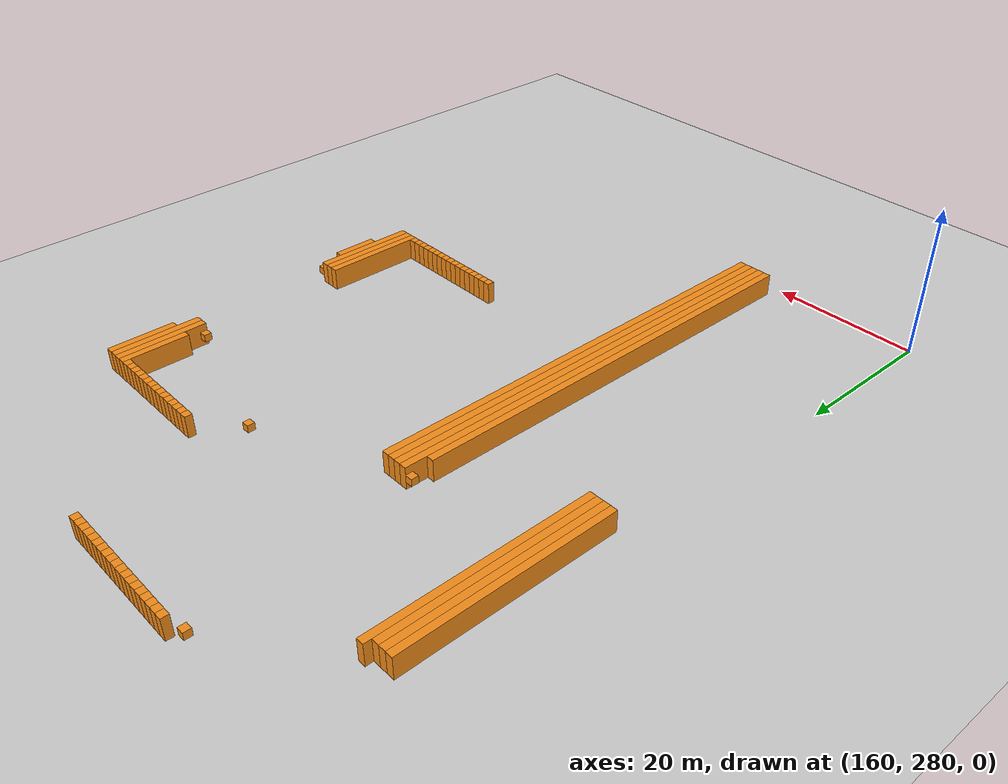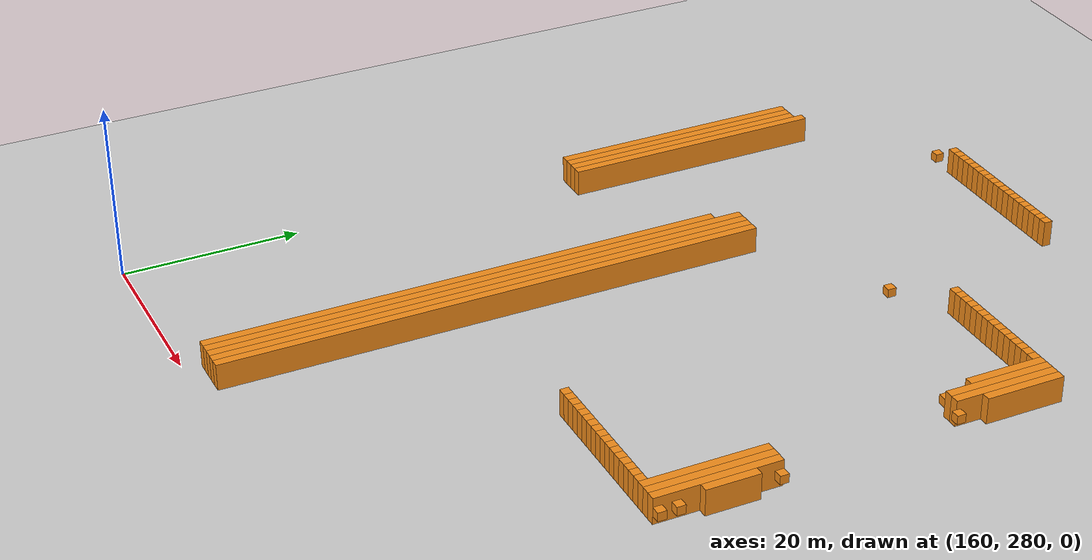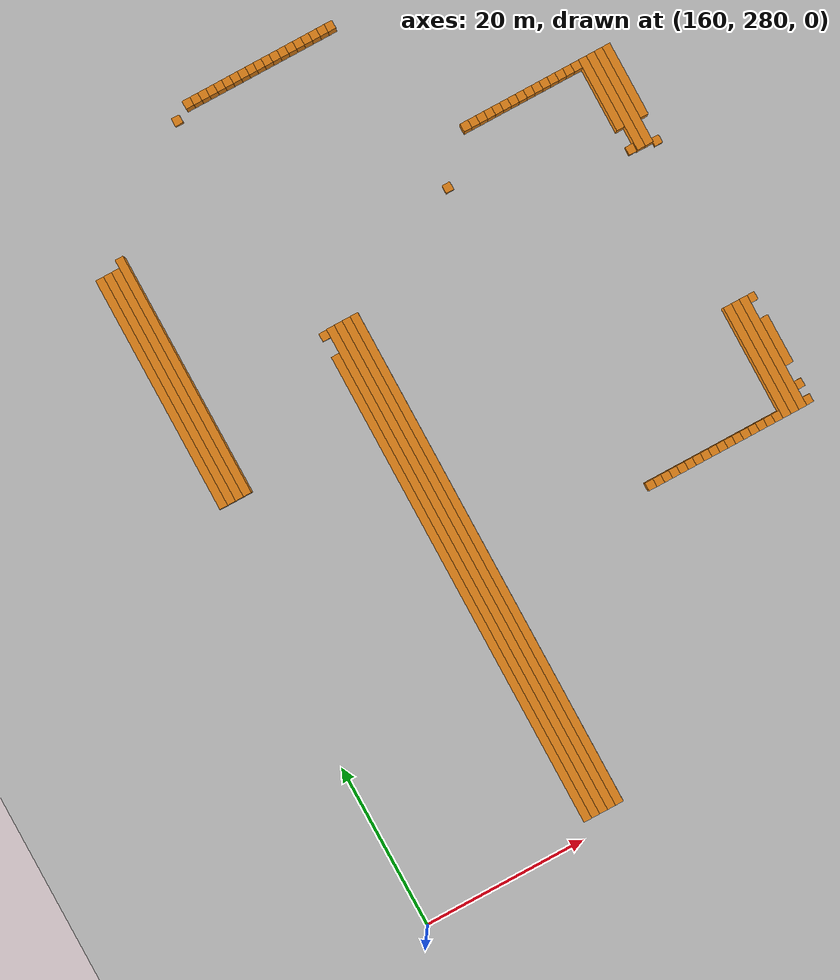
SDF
<sdf version="1.6">
 <world name="default">
  <include><uri>model://ground_plane</uri></include>
  <model name="unit_box_1696">
   <pose>162.50   346.50     1.50 0 0 0</pose>
   <static>1</static>
   <link name="link">
    <inertial>
     <mass>5000</mass>
     <inertia><ixx>200</ixx><ixy>0</ixy><ixz>0</ixz><iyy>200</iyy><iyz>0</iyz><izz>200</izz></inertia>
    </inertial>
    <collision name="collision"><geometry><box><size>1 29 3</size></box></geometry></collision>
    <visual name="visual">
     <geometry><box><size>1 29 3</size></box></geometry>
     <material>
      <script><name>Gazebo/Orange</name><uri>file://media/materials/scripts/gazebo.material</uri></script>
     </material>
    </visual>
   </link>
  </model>
  <model name="unit_box_1704">
   <pose>163.50   346.50     1.50 0 0 0</pose>
   <static>1</static>
   <link name="link">
    <inertial>
     <mass>5000</mass>
     <inertia><ixx>200</ixx><ixy>0</ixy><ixz>0</ixz><iyy>200</iyy><iyz>0</iyz><izz>200</izz></inertia>
    </inertial>
    <collision name="collision"><geometry><box><size>1 29 3</size></box></geometry></collision>
    <visual name="visual">
     <geometry><box><size>1 29 3</size></box></geometry>
     <material>
      <script><name>Gazebo/Orange</name><uri>file://media/materials/scripts/gazebo.material</uri></script>
     </material>
    </visual>
   </link>
  </model>
  <model name="unit_box_1712">
   <pose>164.50   346.50     1.50 0 0 0</pose>
   <static>1</static>
   <link name="link">
    <inertial>
     <mass>5000</mass>
     <inertia><ixx>200</ixx><ixy>0</ixy><ixz>0</ixz><iyy>200</iyy><iyz>0</iyz><izz>200</izz></inertia>
    </inertial>
    <collision name="collision"><geometry><box><size>1 29 3</size></box></geometry></collision>
    <visual name="visual">
     <geometry><box><size>1 29 3</size></box></geometry>
     <material>
      <script><name>Gazebo/Orange</name><uri>file://media/materials/scripts/gazebo.material</uri></script>
     </material>
    </visual>
   </link>
  </model>
  <model name="unit_box_1720">
   <pose>165.50   347.00     1.50 0 0 0</pose>
   <static>1</static>
   <link name="link">
    <inertial>
     <mass>5000</mass>
     <inertia><ixx>200</ixx><ixy>0</ixy><ixz>0</ixz><iyy>200</iyy><iyz>0</iyz><izz>200</izz></inertia>
    </inertial>
    <collision name="collision"><geometry><box><size>1 30 3</size></box></geometry></collision>
    <visual name="visual">
     <geometry><box><size>1 30 3</size></box></geometry>
     <material>
      <script><name>Gazebo/Orange</name><uri>file://media/materials/scripts/gazebo.material</uri></script>
     </material>
    </visual>
   </link>
  </model>
  <model name="unit_box_1809">
   <pose>178.50   372.50     1.50 0 0 0</pose>
   <static>1</static>
   <link name="link">
    <inertial>
     <mass>5000</mass>
     <inertia><ixx>200</ixx><ixy>0</ixy><ixz>0</ixz><iyy>200</iyy><iyz>0</iyz><izz>200</izz></inertia>
    </inertial>
    <collision name="collision"><geometry><box><size>1 1 1</size></box></geometry></collision>
    <visual name="visual">
     <geometry><box><size>1 1 1</size></box></geometry>
     <material>
      <script><name>Gazebo/Orange</name><uri>file://media/materials/scripts/gazebo.material</uri></script>
     </material>
    </visual>
   </link>
  </model>
  <model name="unit_box_1825">
   <pose>180.50   373.50     1.50 0 0 0</pose>
   <static>1</static>
   <link name="link">
    <inertial>
     <mass>5000</mass>
     <inertia><ixx>200</ixx><ixy>0</ixy><ixz>0</ixz><iyy>200</iyy><iyz>0</iyz><izz>200</izz></inertia>
    </inertial>
    <collision name="collision"><geometry><box><size>1 1 3</size></box></geometry></collision>
    <visual name="visual">
     <geometry><box><size>1 1 3</size></box></geometry>
     <material>
      <script><name>Gazebo/Orange</name><uri>file://media/materials/scripts/gazebo.material</uri></script>
     </material>
    </visual>
   </link>
  </model>
  <model name="unit_box_1833">
   <pose>181.50   311.50     1.50 0 0 0</pose>
   <static>1</static>
   <link name="link">
    <inertial>
     <mass>5000</mass>
     <inertia><ixx>200</ixx><ixy>0</ixy><ixz>0</ixz><iyy>200</iyy><iyz>0</iyz><izz>200</izz></inertia>
    </inertial>
    <collision name="collision"><geometry><box><size>1 59 3</size></box></geometry></collision>
    <visual name="visual">
     <geometry><box><size>1 59 3</size></box></geometry>
     <material>
      <script><name>Gazebo/Orange</name><uri>file://media/materials/scripts/gazebo.material</uri></script>
     </material>
    </visual>
   </link>
  </model>
  <model name="unit_box_1834">
   <pose>181.50   343.50     1.50 0 0 0</pose>
   <static>1</static>
   <link name="link">
    <inertial>
     <mass>5000</mass>
     <inertia><ixx>200</ixx><ixy>0</ixy><ixz>0</ixz><iyy>200</iyy><iyz>0</iyz><izz>200</izz></inertia>
    </inertial>
    <collision name="collision"><geometry><box><size>1 1 1</size></box></geometry></collision>
    <visual name="visual">
     <geometry><box><size>1 1 1</size></box></geometry>
     <material>
      <script><name>Gazebo/Orange</name><uri>file://media/materials/scripts/gazebo.material</uri></script>
     </material>
    </visual>
   </link>
  </model>
  <model name="unit_box_1835">
   <pose>181.50   373.50     1.50 0 0 0</pose>
   <static>1</static>
   <link name="link">
    <inertial>
     <mass>5000</mass>
     <inertia><ixx>200</ixx><ixy>0</ixy><ixz>0</ixz><iyy>200</iyy><iyz>0</iyz><izz>200</izz></inertia>
    </inertial>
    <collision name="collision"><geometry><box><size>1 1 3</size></box></geometry></collision>
    <visual name="visual">
     <geometry><box><size>1 1 3</size></box></geometry>
     <material>
      <script><name>Gazebo/Orange</name><uri>file://media/materials/scripts/gazebo.material</uri></script>
     </material>
    </visual>
   </link>
  </model>
  <model name="unit_box_1843">
   <pose>182.50   313.00     1.50 0 0 0</pose>
   <static>1</static>
   <link name="link">
    <inertial>
     <mass>5000</mass>
     <inertia><ixx>200</ixx><ixy>0</ixy><ixz>0</ixz><iyy>200</iyy><iyz>0</iyz><izz>200</izz></inertia>
    </inertial>
    <collision name="collision"><geometry><box><size>1 62 3</size></box></geometry></collision>
    <visual name="visual">
     <geometry><box><size>1 62 3</size></box></geometry>
     <material>
      <script><name>Gazebo/Orange</name><uri>file://media/materials/scripts/gazebo.material</uri></script>
     </material>
    </visual>
   </link>
  </model>
  <model name="unit_box_1844">
   <pose>182.50   373.50     1.50 0 0 0</pose>
   <static>1</static>
   <link name="link">
    <inertial>
     <mass>5000</mass>
     <inertia><ixx>200</ixx><ixy>0</ixy><ixz>0</ixz><iyy>200</iyy><iyz>0</iyz><izz>200</izz></inertia>
    </inertial>
    <collision name="collision"><geometry><box><size>1 1 3</size></box></geometry></collision>
    <visual name="visual">
     <geometry><box><size>1 1 3</size></box></geometry>
     <material>
      <script><name>Gazebo/Orange</name><uri>file://media/materials/scripts/gazebo.material</uri></script>
     </material>
    </visual>
   </link>
  </model>
  <model name="unit_box_1852">
   <pose>183.50   313.00     1.50 0 0 0</pose>
   <static>1</static>
   <link name="link">
    <inertial>
     <mass>5000</mass>
     <inertia><ixx>200</ixx><ixy>0</ixy><ixz>0</ixz><iyy>200</iyy><iyz>0</iyz><izz>200</izz></inertia>
    </inertial>
    <collision name="collision"><geometry><box><size>1 62 3</size></box></geometry></collision>
    <visual name="visual">
     <geometry><box><size>1 62 3</size></box></geometry>
     <material>
      <script><name>Gazebo/Orange</name><uri>file://media/materials/scripts/gazebo.material</uri></script>
     </material>
    </visual>
   </link>
  </model>
  <model name="unit_box_1853">
   <pose>183.50   373.50     1.50 0 0 0</pose>
   <static>1</static>
   <link name="link">
    <inertial>
     <mass>5000</mass>
     <inertia><ixx>200</ixx><ixy>0</ixy><ixz>0</ixz><iyy>200</iyy><iyz>0</iyz><izz>200</izz></inertia>
    </inertial>
    <collision name="collision"><geometry><box><size>1 1 3</size></box></geometry></collision>
    <visual name="visual">
     <geometry><box><size>1 1 3</size></box></geometry>
     <material>
      <script><name>Gazebo/Orange</name><uri>file://media/materials/scripts/gazebo.material</uri></script>
     </material>
    </visual>
   </link>
  </model>
  <model name="unit_box_1861">
   <pose>184.50   313.00     1.50 0 0 0</pose>
   <static>1</static>
   <link name="link">
    <inertial>
     <mass>5000</mass>
     <inertia><ixx>200</ixx><ixy>0</ixy><ixz>0</ixz><iyy>200</iyy><iyz>0</iyz><izz>200</izz></inertia>
    </inertial>
    <collision name="collision"><geometry><box><size>1 62 3</size></box></geometry></collision>
    <visual name="visual">
     <geometry><box><size>1 62 3</size></box></geometry>
     <material>
      <script><name>Gazebo/Orange</name><uri>file://media/materials/scripts/gazebo.material</uri></script>
     </material>
    </visual>
   </link>
  </model>
  <model name="unit_box_1862">
   <pose>184.50   373.50     1.50 0 0 0</pose>
   <static>1</static>
   <link name="link">
    <inertial>
     <mass>5000</mass>
     <inertia><ixx>200</ixx><ixy>0</ixy><ixz>0</ixz><iyy>200</iyy><iyz>0</iyz><izz>200</izz></inertia>
    </inertial>
    <collision name="collision"><geometry><box><size>1 1 3</size></box></geometry></collision>
    <visual name="visual">
     <geometry><box><size>1 1 3</size></box></geometry>
     <material>
      <script><name>Gazebo/Orange</name><uri>file://media/materials/scripts/gazebo.material</uri></script>
     </material>
    </visual>
   </link>
  </model>
  <model name="unit_box_1870">
   <pose>185.50   313.00     1.50 0 0 0</pose>
   <static>1</static>
   <link name="link">
    <inertial>
     <mass>5000</mass>
     <inertia><ixx>200</ixx><ixy>0</ixy><ixz>0</ixz><iyy>200</iyy><iyz>0</iyz><izz>200</izz></inertia>
    </inertial>
    <collision name="collision"><geometry><box><size>1 62 3</size></box></geometry></collision>
    <visual name="visual">
     <geometry><box><size>1 62 3</size></box></geometry>
     <material>
      <script><name>Gazebo/Orange</name><uri>file://media/materials/scripts/gazebo.material</uri></script>
     </material>
    </visual>
   </link>
  </model>
  <model name="unit_box_1871">
   <pose>185.50   373.50     1.50 0 0 0</pose>
   <static>1</static>
   <link name="link">
    <inertial>
     <mass>5000</mass>
     <inertia><ixx>200</ixx><ixy>0</ixy><ixz>0</ixz><iyy>200</iyy><iyz>0</iyz><izz>200</izz></inertia>
    </inertial>
    <collision name="collision"><geometry><box><size>1 1 3</size></box></geometry></collision>
    <visual name="visual">
     <geometry><box><size>1 1 3</size></box></geometry>
     <material>
      <script><name>Gazebo/Orange</name><uri>file://media/materials/scripts/gazebo.material</uri></script>
     </material>
    </visual>
   </link>
  </model>
  <model name="unit_box_1879">
   <pose>186.50   373.50     1.50 0 0 0</pose>
   <static>1</static>
   <link name="link">
    <inertial>
     <mass>5000</mass>
     <inertia><ixx>200</ixx><ixy>0</ixy><ixz>0</ixz><iyy>200</iyy><iyz>0</iyz><izz>200</izz></inertia>
    </inertial>
    <collision name="collision"><geometry><box><size>1 1 3</size></box></geometry></collision>
    <visual name="visual">
     <geometry><box><size>1 1 3</size></box></geometry>
     <material>
      <script><name>Gazebo/Orange</name><uri>file://media/materials/scripts/gazebo.material</uri></script>
     </material>
    </visual>
   </link>
  </model>
  <model name="unit_box_1887">
   <pose>187.50   373.50     1.50 0 0 0</pose>
   <static>1</static>
   <link name="link">
    <inertial>
     <mass>5000</mass>
     <inertia><ixx>200</ixx><ixy>0</ixy><ixz>0</ixz><iyy>200</iyy><iyz>0</iyz><izz>200</izz></inertia>
    </inertial>
    <collision name="collision"><geometry><box><size>1 1 3</size></box></geometry></collision>
    <visual name="visual">
     <geometry><box><size>1 1 3</size></box></geometry>
     <material>
      <script><name>Gazebo/Orange</name><uri>file://media/materials/scripts/gazebo.material</uri></script>
     </material>
    </visual>
   </link>
  </model>
  <model name="unit_box_1895">
   <pose>188.50   373.50     1.50 0 0 0</pose>
   <static>1</static>
   <link name="link">
    <inertial>
     <mass>5000</mass>
     <inertia><ixx>200</ixx><ixy>0</ixy><ixz>0</ixz><iyy>200</iyy><iyz>0</iyz><izz>200</izz></inertia>
    </inertial>
    <collision name="collision"><geometry><box><size>1 1 3</size></box></geometry></collision>
    <visual name="visual">
     <geometry><box><size>1 1 3</size></box></geometry>
     <material>
      <script><name>Gazebo/Orange</name><uri>file://media/materials/scripts/gazebo.material</uri></script>
     </material>
    </visual>
   </link>
  </model>
  <model name="unit_box_1903">
   <pose>189.50   373.50     1.50 0 0 0</pose>
   <static>1</static>
   <link name="link">
    <inertial>
     <mass>5000</mass>
     <inertia><ixx>200</ixx><ixy>0</ixy><ixz>0</ixz><iyy>200</iyy><iyz>0</iyz><izz>200</izz></inertia>
    </inertial>
    <collision name="collision"><geometry><box><size>1 1 3</size></box></geometry></collision>
    <visual name="visual">
     <geometry><box><size>1 1 3</size></box></geometry>
     <material>
      <script><name>Gazebo/Orange</name><uri>file://media/materials/scripts/gazebo.material</uri></script>
     </material>
    </visual>
   </link>
  </model>
  <model name="unit_box_1911">
   <pose>190.50   373.50     1.50 0 0 0</pose>
   <static>1</static>
   <link name="link">
    <inertial>
     <mass>5000</mass>
     <inertia><ixx>200</ixx><ixy>0</ixy><ixz>0</ixz><iyy>200</iyy><iyz>0</iyz><izz>200</izz></inertia>
    </inertial>
    <collision name="collision"><geometry><box><size>1 1 3</size></box></geometry></collision>
    <visual name="visual">
     <geometry><box><size>1 1 3</size></box></geometry>
     <material>
      <script><name>Gazebo/Orange</name><uri>file://media/materials/scripts/gazebo.material</uri></script>
     </material>
    </visual>
   </link>
  </model>
  <model name="unit_box_1919">
   <pose>191.50   373.50     1.50 0 0 0</pose>
   <static>1</static>
   <link name="link">
    <inertial>
     <mass>5000</mass>
     <inertia><ixx>200</ixx><ixy>0</ixy><ixz>0</ixz><iyy>200</iyy><iyz>0</iyz><izz>200</izz></inertia>
    </inertial>
    <collision name="collision"><geometry><box><size>1 1 3</size></box></geometry></collision>
    <visual name="visual">
     <geometry><box><size>1 1 3</size></box></geometry>
     <material>
      <script><name>Gazebo/Orange</name><uri>file://media/materials/scripts/gazebo.material</uri></script>
     </material>
    </visual>
   </link>
  </model>
  <model name="unit_box_1927">
   <pose>192.50   373.50     1.50 0 0 0</pose>
   <static>1</static>
   <link name="link">
    <inertial>
     <mass>5000</mass>
     <inertia><ixx>200</ixx><ixy>0</ixy><ixz>0</ixz><iyy>200</iyy><iyz>0</iyz><izz>200</izz></inertia>
    </inertial>
    <collision name="collision"><geometry><box><size>1 1 3</size></box></geometry></collision>
    <visual name="visual">
     <geometry><box><size>1 1 3</size></box></geometry>
     <material>
      <script><name>Gazebo/Orange</name><uri>file://media/materials/scripts/gazebo.material</uri></script>
     </material>
    </visual>
   </link>
  </model>
  <model name="unit_box_1936">
   <pose>193.50   373.50     1.50 0 0 0</pose>
   <static>1</static>
   <link name="link">
    <inertial>
     <mass>5000</mass>
     <inertia><ixx>200</ixx><ixy>0</ixy><ixz>0</ixz><iyy>200</iyy><iyz>0</iyz><izz>200</izz></inertia>
    </inertial>
    <collision name="collision"><geometry><box><size>1 1 3</size></box></geometry></collision>
    <visual name="visual">
     <geometry><box><size>1 1 3</size></box></geometry>
     <material>
      <script><name>Gazebo/Orange</name><uri>file://media/materials/scripts/gazebo.material</uri></script>
     </material>
    </visual>
   </link>
  </model>
  <model name="unit_box_1945">
   <pose>194.50   373.50     1.50 0 0 0</pose>
   <static>1</static>
   <link name="link">
    <inertial>
     <mass>5000</mass>
     <inertia><ixx>200</ixx><ixy>0</ixy><ixz>0</ixz><iyy>200</iyy><iyz>0</iyz><izz>200</izz></inertia>
    </inertial>
    <collision name="collision"><geometry><box><size>1 1 3</size></box></geometry></collision>
    <visual name="visual">
     <geometry><box><size>1 1 3</size></box></geometry>
     <material>
      <script><name>Gazebo/Orange</name><uri>file://media/materials/scripts/gazebo.material</uri></script>
     </material>
    </visual>
   </link>
  </model>
  <model name="unit_box_1954">
   <pose>195.50   373.50     1.50 0 0 0</pose>
   <static>1</static>
   <link name="link">
    <inertial>
     <mass>5000</mass>
     <inertia><ixx>200</ixx><ixy>0</ixy><ixz>0</ixz><iyy>200</iyy><iyz>0</iyz><izz>200</izz></inertia>
    </inertial>
    <collision name="collision"><geometry><box><size>1 1 3</size></box></geometry></collision>
    <visual name="visual">
     <geometry><box><size>1 1 3</size></box></geometry>
     <material>
      <script><name>Gazebo/Orange</name><uri>file://media/materials/scripts/gazebo.material</uri></script>
     </material>
    </visual>
   </link>
  </model>
  <model name="unit_box_1963">
   <pose>196.50   373.50     1.50 0 0 0</pose>
   <static>1</static>
   <link name="link">
    <inertial>
     <mass>5000</mass>
     <inertia><ixx>200</ixx><ixy>0</ixy><ixz>0</ixz><iyy>200</iyy><iyz>0</iyz><izz>200</izz></inertia>
    </inertial>
    <collision name="collision"><geometry><box><size>1 1 3</size></box></geometry></collision>
    <visual name="visual">
     <geometry><box><size>1 1 3</size></box></geometry>
     <material>
      <script><name>Gazebo/Orange</name><uri>file://media/materials/scripts/gazebo.material</uri></script>
     </material>
    </visual>
   </link>
  </model>
  <model name="unit_box_1972">
   <pose>197.50   373.50     1.50 0 0 0</pose>
   <static>1</static>
   <link name="link">
    <inertial>
     <mass>5000</mass>
     <inertia><ixx>200</ixx><ixy>0</ixy><ixz>0</ixz><iyy>200</iyy><iyz>0</iyz><izz>200</izz></inertia>
    </inertial>
    <collision name="collision"><geometry><box><size>1 1 3</size></box></geometry></collision>
    <visual name="visual">
     <geometry><box><size>1 1 3</size></box></geometry>
     <material>
      <script><name>Gazebo/Orange</name><uri>file://media/materials/scripts/gazebo.material</uri></script>
     </material>
    </visual>
   </link>
  </model>
  <model name="unit_box_1981">
   <pose>198.50   373.50     1.50 0 0 0</pose>
   <static>1</static>
   <link name="link">
    <inertial>
     <mass>5000</mass>
     <inertia><ixx>200</ixx><ixy>0</ixy><ixz>0</ixz><iyy>200</iyy><iyz>0</iyz><izz>200</izz></inertia>
    </inertial>
    <collision name="collision"><geometry><box><size>1 1 3</size></box></geometry></collision>
    <visual name="visual">
     <geometry><box><size>1 1 3</size></box></geometry>
     <material>
      <script><name>Gazebo/Orange</name><uri>file://media/materials/scripts/gazebo.material</uri></script>
     </material>
    </visual>
   </link>
  </model>
  <model name="unit_box_2012">
   <pose>201.50   351.50     1.50 0 0 0</pose>
   <static>1</static>
   <link name="link">
    <inertial>
     <mass>5000</mass>
     <inertia><ixx>200</ixx><ixy>0</ixy><ixz>0</ixz><iyy>200</iyy><iyz>0</iyz><izz>200</izz></inertia>
    </inertial>
    <collision name="collision"><geometry><box><size>1 1 1</size></box></geometry></collision>
    <visual name="visual">
     <geometry><box><size>1 1 1</size></box></geometry>
     <material>
      <script><name>Gazebo/Orange</name><uri>file://media/materials/scripts/gazebo.material</uri></script>
     </material>
    </visual>
   </link>
  </model>
  <model name="unit_box_2020">
   <pose>205.50   311.50     1.50 0 0 0</pose>
   <static>1</static>
   <link name="link">
    <inertial>
     <mass>5000</mass>
     <inertia><ixx>200</ixx><ixy>0</ixy><ixz>0</ixz><iyy>200</iyy><iyz>0</iyz><izz>200</izz></inertia>
    </inertial>
    <collision name="collision"><geometry><box><size>1 1 3</size></box></geometry></collision>
    <visual name="visual">
     <geometry><box><size>1 1 3</size></box></geometry>
     <material>
      <script><name>Gazebo/Orange</name><uri>file://media/materials/scripts/gazebo.material</uri></script>
     </material>
    </visual>
   </link>
  </model>
  <model name="unit_box_2022">
   <pose>206.50   311.50     1.50 0 0 0</pose>
   <static>1</static>
   <link name="link">
    <inertial>
     <mass>5000</mass>
     <inertia><ixx>200</ixx><ixy>0</ixy><ixz>0</ixz><iyy>200</iyy><iyz>0</iyz><izz>200</izz></inertia>
    </inertial>
    <collision name="collision"><geometry><box><size>1 1 3</size></box></geometry></collision>
    <visual name="visual">
     <geometry><box><size>1 1 3</size></box></geometry>
     <material>
      <script><name>Gazebo/Orange</name><uri>file://media/materials/scripts/gazebo.material</uri></script>
     </material>
    </visual>
   </link>
  </model>
  <model name="unit_box_2023">
   <pose>206.50   356.50     1.50 0 0 0</pose>
   <static>1</static>
   <link name="link">
    <inertial>
     <mass>5000</mass>
     <inertia><ixx>200</ixx><ixy>0</ixy><ixz>0</ixz><iyy>200</iyy><iyz>0</iyz><izz>200</izz></inertia>
    </inertial>
    <collision name="collision"><geometry><box><size>1 1 3</size></box></geometry></collision>
    <visual name="visual">
     <geometry><box><size>1 1 3</size></box></geometry>
     <material>
      <script><name>Gazebo/Orange</name><uri>file://media/materials/scripts/gazebo.material</uri></script>
     </material>
    </visual>
   </link>
  </model>
  <model name="unit_box_2024">
   <pose>207.50   311.50     1.50 0 0 0</pose>
   <static>1</static>
   <link name="link">
    <inertial>
     <mass>5000</mass>
     <inertia><ixx>200</ixx><ixy>0</ixy><ixz>0</ixz><iyy>200</iyy><iyz>0</iyz><izz>200</izz></inertia>
    </inertial>
    <collision name="collision"><geometry><box><size>1 1 3</size></box></geometry></collision>
    <visual name="visual">
     <geometry><box><size>1 1 3</size></box></geometry>
     <material>
      <script><name>Gazebo/Orange</name><uri>file://media/materials/scripts/gazebo.material</uri></script>
     </material>
    </visual>
   </link>
  </model>
  <model name="unit_box_2025">
   <pose>207.50   356.50     1.50 0 0 0</pose>
   <static>1</static>
   <link name="link">
    <inertial>
     <mass>5000</mass>
     <inertia><ixx>200</ixx><ixy>0</ixy><ixz>0</ixz><iyy>200</iyy><iyz>0</iyz><izz>200</izz></inertia>
    </inertial>
    <collision name="collision"><geometry><box><size>1 1 3</size></box></geometry></collision>
    <visual name="visual">
     <geometry><box><size>1 1 3</size></box></geometry>
     <material>
      <script><name>Gazebo/Orange</name><uri>file://media/materials/scripts/gazebo.material</uri></script>
     </material>
    </visual>
   </link>
  </model>
  <model name="unit_box_2026">
   <pose>208.50   311.50     1.50 0 0 0</pose>
   <static>1</static>
   <link name="link">
    <inertial>
     <mass>5000</mass>
     <inertia><ixx>200</ixx><ixy>0</ixy><ixz>0</ixz><iyy>200</iyy><iyz>0</iyz><izz>200</izz></inertia>
    </inertial>
    <collision name="collision"><geometry><box><size>1 1 3</size></box></geometry></collision>
    <visual name="visual">
     <geometry><box><size>1 1 3</size></box></geometry>
     <material>
      <script><name>Gazebo/Orange</name><uri>file://media/materials/scripts/gazebo.material</uri></script>
     </material>
    </visual>
   </link>
  </model>
  <model name="unit_box_2027">
   <pose>208.50   356.50     1.50 0 0 0</pose>
   <static>1</static>
   <link name="link">
    <inertial>
     <mass>5000</mass>
     <inertia><ixx>200</ixx><ixy>0</ixy><ixz>0</ixz><iyy>200</iyy><iyz>0</iyz><izz>200</izz></inertia>
    </inertial>
    <collision name="collision"><geometry><box><size>1 1 3</size></box></geometry></collision>
    <visual name="visual">
     <geometry><box><size>1 1 3</size></box></geometry>
     <material>
      <script><name>Gazebo/Orange</name><uri>file://media/materials/scripts/gazebo.material</uri></script>
     </material>
    </visual>
   </link>
  </model>
  <model name="unit_box_2028">
   <pose>209.50   311.50     1.50 0 0 0</pose>
   <static>1</static>
   <link name="link">
    <inertial>
     <mass>5000</mass>
     <inertia><ixx>200</ixx><ixy>0</ixy><ixz>0</ixz><iyy>200</iyy><iyz>0</iyz><izz>200</izz></inertia>
    </inertial>
    <collision name="collision"><geometry><box><size>1 1 3</size></box></geometry></collision>
    <visual name="visual">
     <geometry><box><size>1 1 3</size></box></geometry>
     <material>
      <script><name>Gazebo/Orange</name><uri>file://media/materials/scripts/gazebo.material</uri></script>
     </material>
    </visual>
   </link>
  </model>
  <model name="unit_box_2029">
   <pose>209.50   356.50     1.50 0 0 0</pose>
   <static>1</static>
   <link name="link">
    <inertial>
     <mass>5000</mass>
     <inertia><ixx>200</ixx><ixy>0</ixy><ixz>0</ixz><iyy>200</iyy><iyz>0</iyz><izz>200</izz></inertia>
    </inertial>
    <collision name="collision"><geometry><box><size>1 1 3</size></box></geometry></collision>
    <visual name="visual">
     <geometry><box><size>1 1 3</size></box></geometry>
     <material>
      <script><name>Gazebo/Orange</name><uri>file://media/materials/scripts/gazebo.material</uri></script>
     </material>
    </visual>
   </link>
  </model>
  <model name="unit_box_2030">
   <pose>210.50   311.50     1.50 0 0 0</pose>
   <static>1</static>
   <link name="link">
    <inertial>
     <mass>5000</mass>
     <inertia><ixx>200</ixx><ixy>0</ixy><ixz>0</ixz><iyy>200</iyy><iyz>0</iyz><izz>200</izz></inertia>
    </inertial>
    <collision name="collision"><geometry><box><size>1 1 3</size></box></geometry></collision>
    <visual name="visual">
     <geometry><box><size>1 1 3</size></box></geometry>
     <material>
      <script><name>Gazebo/Orange</name><uri>file://media/materials/scripts/gazebo.material</uri></script>
     </material>
    </visual>
   </link>
  </model>
  <model name="unit_box_2031">
   <pose>210.50   356.50     1.50 0 0 0</pose>
   <static>1</static>
   <link name="link">
    <inertial>
     <mass>5000</mass>
     <inertia><ixx>200</ixx><ixy>0</ixy><ixz>0</ixz><iyy>200</iyy><iyz>0</iyz><izz>200</izz></inertia>
    </inertial>
    <collision name="collision"><geometry><box><size>1 1 3</size></box></geometry></collision>
    <visual name="visual">
     <geometry><box><size>1 1 3</size></box></geometry>
     <material>
      <script><name>Gazebo/Orange</name><uri>file://media/materials/scripts/gazebo.material</uri></script>
     </material>
    </visual>
   </link>
  </model>
  <model name="unit_box_2032">
   <pose>211.50   311.50     1.50 0 0 0</pose>
   <static>1</static>
   <link name="link">
    <inertial>
     <mass>5000</mass>
     <inertia><ixx>200</ixx><ixy>0</ixy><ixz>0</ixz><iyy>200</iyy><iyz>0</iyz><izz>200</izz></inertia>
    </inertial>
    <collision name="collision"><geometry><box><size>1 1 3</size></box></geometry></collision>
    <visual name="visual">
     <geometry><box><size>1 1 3</size></box></geometry>
     <material>
      <script><name>Gazebo/Orange</name><uri>file://media/materials/scripts/gazebo.material</uri></script>
     </material>
    </visual>
   </link>
  </model>
  <model name="unit_box_2033">
   <pose>211.50   356.50     1.50 0 0 0</pose>
   <static>1</static>
   <link name="link">
    <inertial>
     <mass>5000</mass>
     <inertia><ixx>200</ixx><ixy>0</ixy><ixz>0</ixz><iyy>200</iyy><iyz>0</iyz><izz>200</izz></inertia>
    </inertial>
    <collision name="collision"><geometry><box><size>1 1 3</size></box></geometry></collision>
    <visual name="visual">
     <geometry><box><size>1 1 3</size></box></geometry>
     <material>
      <script><name>Gazebo/Orange</name><uri>file://media/materials/scripts/gazebo.material</uri></script>
     </material>
    </visual>
   </link>
  </model>
  <model name="unit_box_2034">
   <pose>212.50   311.50     1.50 0 0 0</pose>
   <static>1</static>
   <link name="link">
    <inertial>
     <mass>5000</mass>
     <inertia><ixx>200</ixx><ixy>0</ixy><ixz>0</ixz><iyy>200</iyy><iyz>0</iyz><izz>200</izz></inertia>
    </inertial>
    <collision name="collision"><geometry><box><size>1 1 3</size></box></geometry></collision>
    <visual name="visual">
     <geometry><box><size>1 1 3</size></box></geometry>
     <material>
      <script><name>Gazebo/Orange</name><uri>file://media/materials/scripts/gazebo.material</uri></script>
     </material>
    </visual>
   </link>
  </model>
  <model name="unit_box_2035">
   <pose>212.50   356.50     1.50 0 0 0</pose>
   <static>1</static>
   <link name="link">
    <inertial>
     <mass>5000</mass>
     <inertia><ixx>200</ixx><ixy>0</ixy><ixz>0</ixz><iyy>200</iyy><iyz>0</iyz><izz>200</izz></inertia>
    </inertial>
    <collision name="collision"><geometry><box><size>1 1 3</size></box></geometry></collision>
    <visual name="visual">
     <geometry><box><size>1 1 3</size></box></geometry>
     <material>
      <script><name>Gazebo/Orange</name><uri>file://media/materials/scripts/gazebo.material</uri></script>
     </material>
    </visual>
   </link>
  </model>
  <model name="unit_box_2036">
   <pose>213.50   311.50     1.50 0 0 0</pose>
   <static>1</static>
   <link name="link">
    <inertial>
     <mass>5000</mass>
     <inertia><ixx>200</ixx><ixy>0</ixy><ixz>0</ixz><iyy>200</iyy><iyz>0</iyz><izz>200</izz></inertia>
    </inertial>
    <collision name="collision"><geometry><box><size>1 1 3</size></box></geometry></collision>
    <visual name="visual">
     <geometry><box><size>1 1 3</size></box></geometry>
     <material>
      <script><name>Gazebo/Orange</name><uri>file://media/materials/scripts/gazebo.material</uri></script>
     </material>
    </visual>
   </link>
  </model>
  <model name="unit_box_2037">
   <pose>213.50   356.50     1.50 0 0 0</pose>
   <static>1</static>
   <link name="link">
    <inertial>
     <mass>5000</mass>
     <inertia><ixx>200</ixx><ixy>0</ixy><ixz>0</ixz><iyy>200</iyy><iyz>0</iyz><izz>200</izz></inertia>
    </inertial>
    <collision name="collision"><geometry><box><size>1 1 3</size></box></geometry></collision>
    <visual name="visual">
     <geometry><box><size>1 1 3</size></box></geometry>
     <material>
      <script><name>Gazebo/Orange</name><uri>file://media/materials/scripts/gazebo.material</uri></script>
     </material>
    </visual>
   </link>
  </model>
  <model name="unit_box_2038">
   <pose>214.50   311.50     1.50 0 0 0</pose>
   <static>1</static>
   <link name="link">
    <inertial>
     <mass>5000</mass>
     <inertia><ixx>200</ixx><ixy>0</ixy><ixz>0</ixz><iyy>200</iyy><iyz>0</iyz><izz>200</izz></inertia>
    </inertial>
    <collision name="collision"><geometry><box><size>1 1 3</size></box></geometry></collision>
    <visual name="visual">
     <geometry><box><size>1 1 3</size></box></geometry>
     <material>
      <script><name>Gazebo/Orange</name><uri>file://media/materials/scripts/gazebo.material</uri></script>
     </material>
    </visual>
   </link>
  </model>
  <model name="unit_box_2039">
   <pose>214.50   356.50     1.50 0 0 0</pose>
   <static>1</static>
   <link name="link">
    <inertial>
     <mass>5000</mass>
     <inertia><ixx>200</ixx><ixy>0</ixy><ixz>0</ixz><iyy>200</iyy><iyz>0</iyz><izz>200</izz></inertia>
    </inertial>
    <collision name="collision"><geometry><box><size>1 1 3</size></box></geometry></collision>
    <visual name="visual">
     <geometry><box><size>1 1 3</size></box></geometry>
     <material>
      <script><name>Gazebo/Orange</name><uri>file://media/materials/scripts/gazebo.material</uri></script>
     </material>
    </visual>
   </link>
  </model>
  <model name="unit_box_2040">
   <pose>215.50   311.50     1.50 0 0 0</pose>
   <static>1</static>
   <link name="link">
    <inertial>
     <mass>5000</mass>
     <inertia><ixx>200</ixx><ixy>0</ixy><ixz>0</ixz><iyy>200</iyy><iyz>0</iyz><izz>200</izz></inertia>
    </inertial>
    <collision name="collision"><geometry><box><size>1 1 3</size></box></geometry></collision>
    <visual name="visual">
     <geometry><box><size>1 1 3</size></box></geometry>
     <material>
      <script><name>Gazebo/Orange</name><uri>file://media/materials/scripts/gazebo.material</uri></script>
     </material>
    </visual>
   </link>
  </model>
  <model name="unit_box_2041">
   <pose>215.50   356.50     1.50 0 0 0</pose>
   <static>1</static>
   <link name="link">
    <inertial>
     <mass>5000</mass>
     <inertia><ixx>200</ixx><ixy>0</ixy><ixz>0</ixz><iyy>200</iyy><iyz>0</iyz><izz>200</izz></inertia>
    </inertial>
    <collision name="collision"><geometry><box><size>1 1 3</size></box></geometry></collision>
    <visual name="visual">
     <geometry><box><size>1 1 3</size></box></geometry>
     <material>
      <script><name>Gazebo/Orange</name><uri>file://media/materials/scripts/gazebo.material</uri></script>
     </material>
    </visual>
   </link>
  </model>
  <model name="unit_box_2042">
   <pose>216.50   311.50     1.50 0 0 0</pose>
   <static>1</static>
   <link name="link">
    <inertial>
     <mass>5000</mass>
     <inertia><ixx>200</ixx><ixy>0</ixy><ixz>0</ixz><iyy>200</iyy><iyz>0</iyz><izz>200</izz></inertia>
    </inertial>
    <collision name="collision"><geometry><box><size>1 1 3</size></box></geometry></collision>
    <visual name="visual">
     <geometry><box><size>1 1 3</size></box></geometry>
     <material>
      <script><name>Gazebo/Orange</name><uri>file://media/materials/scripts/gazebo.material</uri></script>
     </material>
    </visual>
   </link>
  </model>
  <model name="unit_box_2043">
   <pose>216.50   356.50     1.50 0 0 0</pose>
   <static>1</static>
   <link name="link">
    <inertial>
     <mass>5000</mass>
     <inertia><ixx>200</ixx><ixy>0</ixy><ixz>0</ixz><iyy>200</iyy><iyz>0</iyz><izz>200</izz></inertia>
    </inertial>
    <collision name="collision"><geometry><box><size>1 1 3</size></box></geometry></collision>
    <visual name="visual">
     <geometry><box><size>1 1 3</size></box></geometry>
     <material>
      <script><name>Gazebo/Orange</name><uri>file://media/materials/scripts/gazebo.material</uri></script>
     </material>
    </visual>
   </link>
  </model>
  <model name="unit_box_2044">
   <pose>217.50   311.50     1.50 0 0 0</pose>
   <static>1</static>
   <link name="link">
    <inertial>
     <mass>5000</mass>
     <inertia><ixx>200</ixx><ixy>0</ixy><ixz>0</ixz><iyy>200</iyy><iyz>0</iyz><izz>200</izz></inertia>
    </inertial>
    <collision name="collision"><geometry><box><size>1 1 3</size></box></geometry></collision>
    <visual name="visual">
     <geometry><box><size>1 1 3</size></box></geometry>
     <material>
      <script><name>Gazebo/Orange</name><uri>file://media/materials/scripts/gazebo.material</uri></script>
     </material>
    </visual>
   </link>
  </model>
  <model name="unit_box_2045">
   <pose>217.50   356.50     1.50 0 0 0</pose>
   <static>1</static>
   <link name="link">
    <inertial>
     <mass>5000</mass>
     <inertia><ixx>200</ixx><ixy>0</ixy><ixz>0</ixz><iyy>200</iyy><iyz>0</iyz><izz>200</izz></inertia>
    </inertial>
    <collision name="collision"><geometry><box><size>1 1 3</size></box></geometry></collision>
    <visual name="visual">
     <geometry><box><size>1 1 3</size></box></geometry>
     <material>
      <script><name>Gazebo/Orange</name><uri>file://media/materials/scripts/gazebo.material</uri></script>
     </material>
    </visual>
   </link>
  </model>
  <model name="unit_box_2046">
   <pose>218.50   311.50     1.50 0 0 0</pose>
   <static>1</static>
   <link name="link">
    <inertial>
     <mass>5000</mass>
     <inertia><ixx>200</ixx><ixy>0</ixy><ixz>0</ixz><iyy>200</iyy><iyz>0</iyz><izz>200</izz></inertia>
    </inertial>
    <collision name="collision"><geometry><box><size>1 1 3</size></box></geometry></collision>
    <visual name="visual">
     <geometry><box><size>1 1 3</size></box></geometry>
     <material>
      <script><name>Gazebo/Orange</name><uri>file://media/materials/scripts/gazebo.material</uri></script>
     </material>
    </visual>
   </link>
  </model>
  <model name="unit_box_2047">
   <pose>218.50   356.50     1.50 0 0 0</pose>
   <static>1</static>
   <link name="link">
    <inertial>
     <mass>5000</mass>
     <inertia><ixx>200</ixx><ixy>0</ixy><ixz>0</ixz><iyy>200</iyy><iyz>0</iyz><izz>200</izz></inertia>
    </inertial>
    <collision name="collision"><geometry><box><size>1 1 3</size></box></geometry></collision>
    <visual name="visual">
     <geometry><box><size>1 1 3</size></box></geometry>
     <material>
      <script><name>Gazebo/Orange</name><uri>file://media/materials/scripts/gazebo.material</uri></script>
     </material>
    </visual>
   </link>
  </model>
  <model name="unit_box_2048">
   <pose>219.50   311.50     1.50 0 0 0</pose>
   <static>1</static>
   <link name="link">
    <inertial>
     <mass>5000</mass>
     <inertia><ixx>200</ixx><ixy>0</ixy><ixz>0</ixz><iyy>200</iyy><iyz>0</iyz><izz>200</izz></inertia>
    </inertial>
    <collision name="collision"><geometry><box><size>1 1 3</size></box></geometry></collision>
    <visual name="visual">
     <geometry><box><size>1 1 3</size></box></geometry>
     <material>
      <script><name>Gazebo/Orange</name><uri>file://media/materials/scripts/gazebo.material</uri></script>
     </material>
    </visual>
   </link>
  </model>
  <model name="unit_box_2049">
   <pose>219.50   356.50     1.50 0 0 0</pose>
   <static>1</static>
   <link name="link">
    <inertial>
     <mass>5000</mass>
     <inertia><ixx>200</ixx><ixy>0</ixy><ixz>0</ixz><iyy>200</iyy><iyz>0</iyz><izz>200</izz></inertia>
    </inertial>
    <collision name="collision"><geometry><box><size>1 1 3</size></box></geometry></collision>
    <visual name="visual">
     <geometry><box><size>1 1 3</size></box></geometry>
     <material>
      <script><name>Gazebo/Orange</name><uri>file://media/materials/scripts/gazebo.material</uri></script>
     </material>
    </visual>
   </link>
  </model>
  <model name="unit_box_2050">
   <pose>220.50   311.50     1.50 0 0 0</pose>
   <static>1</static>
   <link name="link">
    <inertial>
     <mass>5000</mass>
     <inertia><ixx>200</ixx><ixy>0</ixy><ixz>0</ixz><iyy>200</iyy><iyz>0</iyz><izz>200</izz></inertia>
    </inertial>
    <collision name="collision"><geometry><box><size>1 1 3</size></box></geometry></collision>
    <visual name="visual">
     <geometry><box><size>1 1 3</size></box></geometry>
     <material>
      <script><name>Gazebo/Orange</name><uri>file://media/materials/scripts/gazebo.material</uri></script>
     </material>
    </visual>
   </link>
  </model>
  <model name="unit_box_2051">
   <pose>220.50   356.50     1.50 0 0 0</pose>
   <static>1</static>
   <link name="link">
    <inertial>
     <mass>5000</mass>
     <inertia><ixx>200</ixx><ixy>0</ixy><ixz>0</ixz><iyy>200</iyy><iyz>0</iyz><izz>200</izz></inertia>
    </inertial>
    <collision name="collision"><geometry><box><size>1 1 3</size></box></geometry></collision>
    <visual name="visual">
     <geometry><box><size>1 1 3</size></box></geometry>
     <material>
      <script><name>Gazebo/Orange</name><uri>file://media/materials/scripts/gazebo.material</uri></script>
     </material>
    </visual>
   </link>
  </model>
  <model name="unit_box_2052">
   <pose>221.50   311.50     1.50 0 0 0</pose>
   <static>1</static>
   <link name="link">
    <inertial>
     <mass>5000</mass>
     <inertia><ixx>200</ixx><ixy>0</ixy><ixz>0</ixz><iyy>200</iyy><iyz>0</iyz><izz>200</izz></inertia>
    </inertial>
    <collision name="collision"><geometry><box><size>1 1 3</size></box></geometry></collision>
    <visual name="visual">
     <geometry><box><size>1 1 3</size></box></geometry>
     <material>
      <script><name>Gazebo/Orange</name><uri>file://media/materials/scripts/gazebo.material</uri></script>
     </material>
    </visual>
   </link>
  </model>
  <model name="unit_box_2053">
   <pose>221.50   345.50     1.50 0 0 0</pose>
   <static>1</static>
   <link name="link">
    <inertial>
     <mass>5000</mass>
     <inertia><ixx>200</ixx><ixy>0</ixy><ixz>0</ixz><iyy>200</iyy><iyz>0</iyz><izz>200</izz></inertia>
    </inertial>
    <collision name="collision"><geometry><box><size>1 1 1</size></box></geometry></collision>
    <visual name="visual">
     <geometry><box><size>1 1 1</size></box></geometry>
     <material>
      <script><name>Gazebo/Orange</name><uri>file://media/materials/scripts/gazebo.material</uri></script>
     </material>
    </visual>
   </link>
  </model>
  <model name="unit_box_2054">
   <pose>221.50   352.50     1.50 0 0 0</pose>
   <static>1</static>
   <link name="link">
    <inertial>
     <mass>5000</mass>
     <inertia><ixx>200</ixx><ixy>0</ixy><ixz>0</ixz><iyy>200</iyy><iyz>0</iyz><izz>200</izz></inertia>
    </inertial>
    <collision name="collision"><geometry><box><size>1 9 3</size></box></geometry></collision>
    <visual name="visual">
     <geometry><box><size>1 9 3</size></box></geometry>
     <material>
      <script><name>Gazebo/Orange</name><uri>file://media/materials/scripts/gazebo.material</uri></script>
     </material>
    </visual>
   </link>
  </model>
  <model name="unit_box_2055">
   <pose>222.50   318.00     1.50 0 0 0</pose>
   <static>1</static>
   <link name="link">
    <inertial>
     <mass>5000</mass>
     <inertia><ixx>200</ixx><ixy>0</ixy><ixz>0</ixz><iyy>200</iyy><iyz>0</iyz><izz>200</izz></inertia>
    </inertial>
    <collision name="collision"><geometry><box><size>1 14 3</size></box></geometry></collision>
    <visual name="visual">
     <geometry><box><size>1 14 3</size></box></geometry>
     <material>
      <script><name>Gazebo/Orange</name><uri>file://media/materials/scripts/gazebo.material</uri></script>
     </material>
    </visual>
   </link>
  </model>
  <model name="unit_box_2056">
   <pose>222.50   351.00     1.50 0 0 0</pose>
   <static>1</static>
   <link name="link">
    <inertial>
     <mass>5000</mass>
     <inertia><ixx>200</ixx><ixy>0</ixy><ixz>0</ixz><iyy>200</iyy><iyz>0</iyz><izz>200</izz></inertia>
    </inertial>
    <collision name="collision"><geometry><box><size>1 12 3</size></box></geometry></collision>
    <visual name="visual">
     <geometry><box><size>1 12 3</size></box></geometry>
     <material>
      <script><name>Gazebo/Orange</name><uri>file://media/materials/scripts/gazebo.material</uri></script>
     </material>
    </visual>
   </link>
  </model>
  <model name="unit_box_2057">
   <pose>223.50   318.00     1.50 0 0 0</pose>
   <static>1</static>
   <link name="link">
    <inertial>
     <mass>5000</mass>
     <inertia><ixx>200</ixx><ixy>0</ixy><ixz>0</ixz><iyy>200</iyy><iyz>0</iyz><izz>200</izz></inertia>
    </inertial>
    <collision name="collision"><geometry><box><size>1 14 3</size></box></geometry></collision>
    <visual name="visual">
     <geometry><box><size>1 14 3</size></box></geometry>
     <material>
      <script><name>Gazebo/Orange</name><uri>file://media/materials/scripts/gazebo.material</uri></script>
     </material>
    </visual>
   </link>
  </model>
  <model name="unit_box_2058">
   <pose>223.50   351.00     1.50 0 0 0</pose>
   <static>1</static>
   <link name="link">
    <inertial>
     <mass>5000</mass>
     <inertia><ixx>200</ixx><ixy>0</ixy><ixz>0</ixz><iyy>200</iyy><iyz>0</iyz><izz>200</izz></inertia>
    </inertial>
    <collision name="collision"><geometry><box><size>1 12 3</size></box></geometry></collision>
    <visual name="visual">
     <geometry><box><size>1 12 3</size></box></geometry>
     <material>
      <script><name>Gazebo/Orange</name><uri>file://media/materials/scripts/gazebo.material</uri></script>
     </material>
    </visual>
   </link>
  </model>
  <model name="unit_box_2059">
   <pose>224.50   318.00     1.50 0 0 0</pose>
   <static>1</static>
   <link name="link">
    <inertial>
     <mass>5000</mass>
     <inertia><ixx>200</ixx><ixy>0</ixy><ixz>0</ixz><iyy>200</iyy><iyz>0</iyz><izz>200</izz></inertia>
    </inertial>
    <collision name="collision"><geometry><box><size>1 14 3</size></box></geometry></collision>
    <visual name="visual">
     <geometry><box><size>1 14 3</size></box></geometry>
     <material>
      <script><name>Gazebo/Orange</name><uri>file://media/materials/scripts/gazebo.material</uri></script>
     </material>
    </visual>
   </link>
  </model>
  <model name="unit_box_2060">
   <pose>224.50   345.00     1.50 0 0 0</pose>
   <static>1</static>
   <link name="link">
    <inertial>
     <mass>5000</mass>
     <inertia><ixx>200</ixx><ixy>0</ixy><ixz>0</ixz><iyy>200</iyy><iyz>0</iyz><izz>200</izz></inertia>
    </inertial>
    <collision name="collision"><geometry><box><size>1 1 1</size></box></geometry></collision>
    <visual name="visual">
     <geometry><box><size>1 1 1</size></box></geometry>
     <material>
      <script><name>Gazebo/Orange</name><uri>file://media/materials/scripts/gazebo.material</uri></script>
     </material>
    </visual>
   </link>
  </model>
  <model name="unit_box_2061">
   <pose>224.50   352.50     1.50 0 0 0</pose>
   <static>1</static>
   <link name="link">
    <inertial>
     <mass>5000</mass>
     <inertia><ixx>200</ixx><ixy>0</ixy><ixz>0</ixz><iyy>200</iyy><iyz>0</iyz><izz>200</izz></inertia>
    </inertial>
    <collision name="collision"><geometry><box><size>1 9 3</size></box></geometry></collision>
    <visual name="visual">
     <geometry><box><size>1 9 3</size></box></geometry>
     <material>
      <script><name>Gazebo/Orange</name><uri>file://media/materials/scripts/gazebo.material</uri></script>
     </material>
    </visual>
   </link>
  </model>
  <model name="unit_box_2062">
   <pose>225.50   311.50     1.50 0 0 0</pose>
   <static>1</static>
   <link name="link">
    <inertial>
     <mass>5000</mass>
     <inertia><ixx>200</ixx><ixy>0</ixy><ixz>0</ixz><iyy>200</iyy><iyz>0</iyz><izz>200</izz></inertia>
    </inertial>
    <collision name="collision"><geometry><box><size>1 1 1</size></box></geometry></collision>
    <visual name="visual">
     <geometry><box><size>1 1 1</size></box></geometry>
     <material>
      <script><name>Gazebo/Orange</name><uri>file://media/materials/scripts/gazebo.material</uri></script>
     </material>
    </visual>
   </link>
  </model>
  <model name="unit_box_2063">
   <pose>225.50   313.50     1.50 0 0 0</pose>
   <static>1</static>
   <link name="link">
    <inertial>
     <mass>5000</mass>
     <inertia><ixx>200</ixx><ixy>0</ixy><ixz>0</ixz><iyy>200</iyy><iyz>0</iyz><izz>200</izz></inertia>
    </inertial>
    <collision name="collision"><geometry><box><size>1 1 1</size></box></geometry></collision>
    <visual name="visual">
     <geometry><box><size>1 1 1</size></box></geometry>
     <material>
      <script><name>Gazebo/Orange</name><uri>file://media/materials/scripts/gazebo.material</uri></script>
     </material>
    </visual>
   </link>
  </model>
  <model name="unit_box_2064">
   <pose>225.50   319.00     1.50 0 0 0</pose>
   <static>1</static>
   <link name="link">
    <inertial>
     <mass>5000</mass>
     <inertia><ixx>200</ixx><ixy>0</ixy><ixz>0</ixz><iyy>200</iyy><iyz>0</iyz><izz>200</izz></inertia>
    </inertial>
    <collision name="collision"><geometry><box><size>1 6 3</size></box></geometry></collision>
    <visual name="visual">
     <geometry><box><size>1 6 3</size></box></geometry>
     <material>
      <script><name>Gazebo/Orange</name><uri>file://media/materials/scripts/gazebo.material</uri></script>
     </material>
    </visual>
   </link>
  </model>
  <model name="unit_box_2065">
   <pose>225.50   324.50     1.50 0 0 0</pose>
   <static>1</static>
   <link name="link">
    <inertial>
     <mass>5000</mass>
     <inertia><ixx>200</ixx><ixy>0</ixy><ixz>0</ixz><iyy>200</iyy><iyz>0</iyz><izz>200</izz></inertia>
    </inertial>
    <collision name="collision"><geometry><box><size>1 1 1</size></box></geometry></collision>
    <visual name="visual">
     <geometry><box><size>1 1 1</size></box></geometry>
     <material>
      <script><name>Gazebo/Orange</name><uri>file://media/materials/scripts/gazebo.material</uri></script>
     </material>
    </visual>
   </link>
  </model>
 </world>
</sdf>
